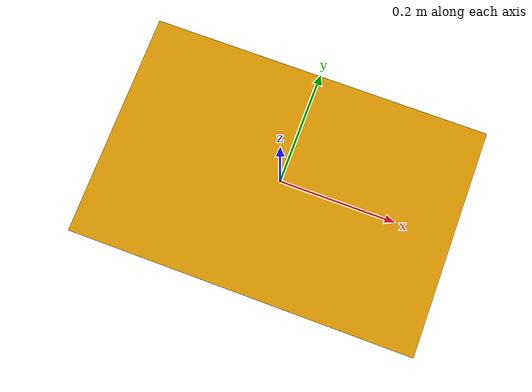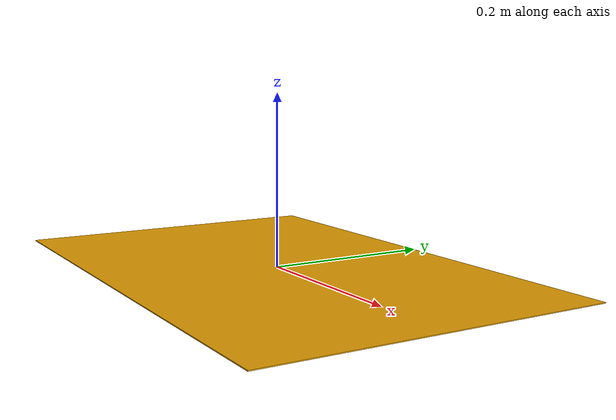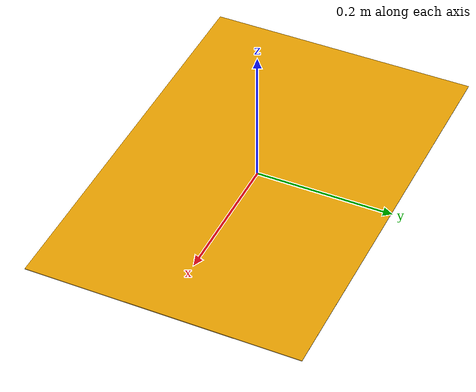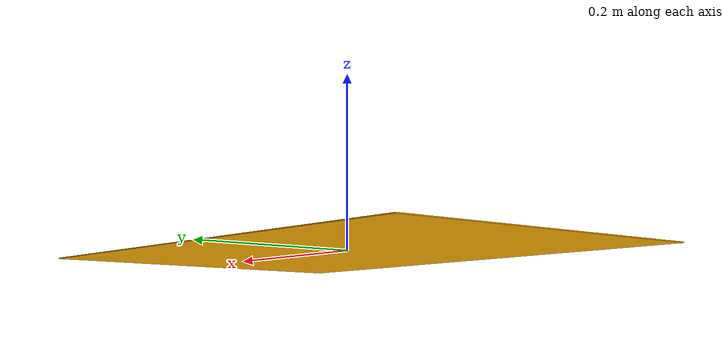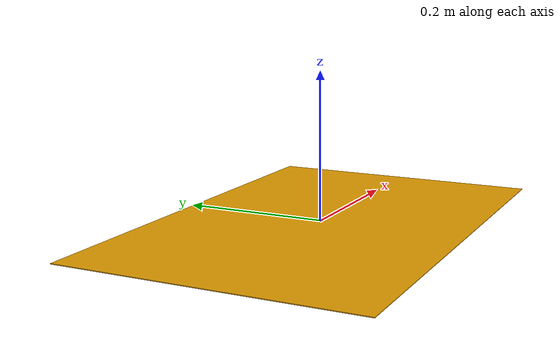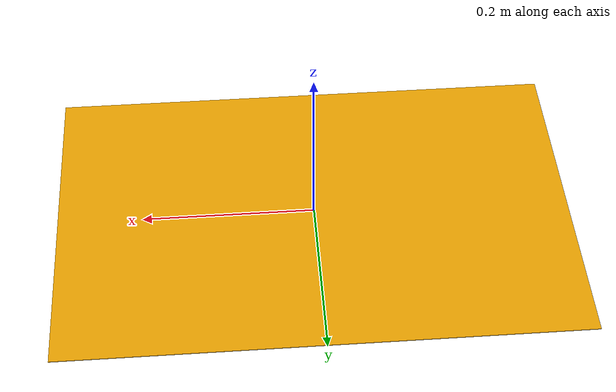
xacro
<?xml version='1.0' encoding='utf-8'?>
<robot xmlns:xacro="http://www.ros.org/wiki/xacro" name="pandas">
    <xacro:include filename="$(find franka_description)/robots/common/utils.xacro" />

    <material name="grey">
        <color rgba=".5 .5 .5 1" />
    </material>
    <link name="obstacle1">
        <inertial>
            <origin xyz="0.0 0.0 0.0" rpy="0 0 0" />
            <mass value="0.6" />
            <inertia ixx="0.001" ixy="0.0" ixz="0.0"
                iyy="0.001" iyz="0.0"
                izz="0.001" />
        </inertial>
        <visual>
            <origin xyz="0 0 0.0" rpy="0 0 0" />
            <geometry>
                <box size="0.597 0.397 0.001" />
            </geometry>
            <color name="grey" />
        </visual>

    <collision>
      <origin xyz="-0.5 0.0 0.15" />
      <geometry>
        <cylinder length="0.3" radius="0.1" />
      </geometry>
    </collision>

     <!-- Note: these two are deleted in collision model update (robot_model.py)-->
     <collision>
      <origin xyz="-0.5 0.0 0.3" />
      <geometry>
        <sphere radius="0.1" />
      </geometry>
    </collision>

    <collision>
      <origin xyz="-0.5 0.0 0.0" />
      <geometry>
        <sphere radius="0.1" />
      </geometry>
    </collision>

    </link>
</robot>
